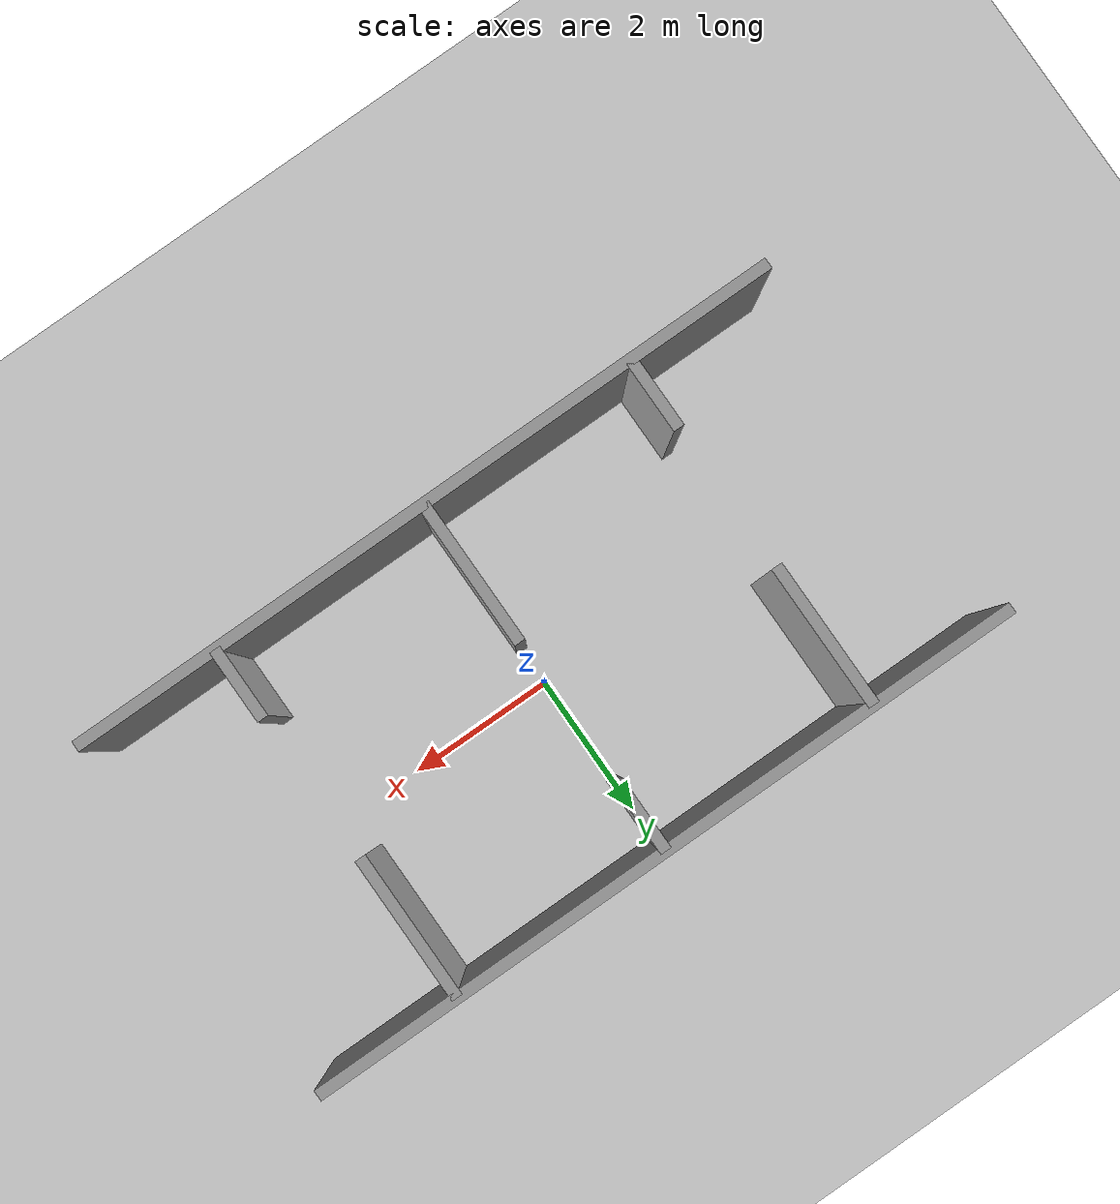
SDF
<sdf version="1.7">
 <world name="default">
  <light name="sun" type="directional">
   <pose>0 0 10 0 -0 0</pose>
   <diffuse>0.8 0.8 0.8 1</diffuse>
   <specular>0.2 0.2 0.2 1</specular>
   <attenuation>
    <range>1000</range>
    <constant>0.9</constant>
    <linear>0.01</linear>
    <quadratic>0.001</quadratic>
   </attenuation>
   <direction>-0.5 0.1 -0.9</direction>
   <spot><inner_angle>0</inner_angle><outer_angle>0</outer_angle><falloff>0</falloff></spot>
  </light>
  <model name="ground_plane">
   <static>1</static>
   <link name="link">
    <collision name="collision">
     <geometry><plane><normal>0 0 1</normal><size>100 100</size></plane></geometry>
     <surface>
      <contact><collide_bitmask>65535</collide_bitmask></contact>
      <friction><ode><mu>100</mu><mu2>50</mu2></ode></friction>
     </surface>
    </collision>
    <visual name="visual">
     <cast_shadows>0</cast_shadows>
     <geometry><plane><normal>0 0 1</normal><size>100 100</size></plane></geometry>
     <material>
      <script><uri>file://media/materials/scripts/gazebo.material</uri><name>Gazebo/Grey</name></script>
     </material>
    </visual>
   </link>
  </model>
  <gravity>0 0 -9.8</gravity>
  <magnetic_field>6e-06 2.3e-05 -4.2e-05</magnetic_field>
  <atmosphere type="adiabatic"/>
  <physics type="ode">
   <max_step_size>0.001</max_step_size>
   <real_time_factor>1</real_time_factor>
   <real_time_update_rate>1000</real_time_update_rate>
  </physics>
  <scene><ambient>0.4 0.4 0.4 1</ambient><background>0.7 0.7 0.7 1</background><shadows>1</shadows></scene>
  <spherical_coordinates>
   <surface_model>EARTH_WGS84</surface_model>
   <latitude_deg>0</latitude_deg>
   <longitude_deg>0</longitude_deg>
   <elevation>0</elevation>
   <heading_deg>0</heading_deg>
  </spherical_coordinates>
  <model name="wall_1">
   <link name="Wall_2">
    <inertial>
     <mass>1</mass>
     <inertia><ixx>1</ixx><ixy>0</ixy><ixz>0</ixz><iyy>1</iyy><iyz>0</iyz><izz>1</izz></inertia>
    </inertial>
    <visual name="Wall_2_Visual">
     <pose>0 0 1.25 0 -0 0</pose>
     <geometry><box><size>10 0.15 2.5</size></box></geometry>
     <material>
      <script><uri>file://media/materials/scripts/gazebo.material</uri><name>Gazebo/Grey</name></script>
      <ambient>1 1 1 1</ambient>
      <shader type="pixel"><normal_map>__default__</normal_map></shader>
      <diffuse>0.7 0.7 0.7 1</diffuse>
      <specular>0.01 0.01 0.01 1</specular>
      <emissive>0 0 0 1</emissive>
     </material>
     <meta><layer>0</layer></meta>
    </visual>
    <collision name="Wall_2_Collision">
     <pose>0 0 1.25 0 -0 0</pose>
     <geometry><box><size>10 0.15 2.5</size></box></geometry>
     <surface>
      <friction>
       <ode><mu>1</mu><mu2>1</mu2><fdir1>0 0 0</fdir1><slip1>0</slip1><slip2>0</slip2></ode>
       <torsional>
        <coefficient>1</coefficient>
        <patch_radius>0</patch_radius>
        <surface_radius>0</surface_radius>
        <use_patch_radius>1</use_patch_radius>
        <ode><slip>0</slip></ode>
       </torsional>
      </friction>
      <bounce><restitution_coefficient>0</restitution_coefficient><threshold>1e+06</threshold></bounce>
      <contact>
       <collide_without_contact>0</collide_without_contact>
       <collide_without_contact_bitmask>1</collide_without_contact_bitmask>
       <collide_bitmask>1</collide_bitmask>
       <ode>
        <soft_cfm>0</soft_cfm>
        <soft_erp>0.2</soft_erp>
        <kp>1e+13</kp>
        <kd>1</kd>
        <max_vel>0.01</max_vel>
        <min_depth>0</min_depth>
       </ode>
       <bullet>
        <split_impulse>1</split_impulse>
        <split_impulse_penetration_threshold>-0.01</split_impulse_penetration_threshold>
        <soft_cfm>0</soft_cfm>
        <soft_erp>0.2</soft_erp>
        <kp>1e+13</kp>
        <kd>1</kd>
       </bullet>
      </contact>
     </surface>
    </collision>
   </link>
   <static>1</static>
   <pose>0 2.5 0 0 -0 0</pose>
  </model>
  <model name="wall_1_clone">
   <link name="Wall_2">
    <inertial>
     <mass>1</mass>
     <inertia><ixx>1</ixx><ixy>0</ixy><ixz>0</ixz><iyy>1</iyy><iyz>0</iyz><izz>1</izz></inertia>
    </inertial>
    <visual name="Wall_2_Visual">
     <pose>0 0 1.25 0 -0 0</pose>
     <geometry><box><size>10 0.15 2.5</size></box></geometry>
     <material>
      <script><uri>file://media/materials/scripts/gazebo.material</uri><name>Gazebo/Grey</name></script>
      <ambient>1 1 1 1</ambient>
      <shader type="pixel"><normal_map>__default__</normal_map></shader>
      <diffuse>0.7 0.7 0.7 1</diffuse>
      <specular>0.01 0.01 0.01 1</specular>
      <emissive>0 0 0 1</emissive>
     </material>
     <meta><layer>0</layer></meta>
    </visual>
    <collision name="Wall_2_Collision">
     <pose>0 0 1.25 0 -0 0</pose>
     <geometry><box><size>10 0.15 2.5</size></box></geometry>
     <surface>
      <friction>
       <ode><mu>1</mu><mu2>1</mu2><fdir1>0 0 0</fdir1><slip1>0</slip1><slip2>0</slip2></ode>
       <torsional>
        <coefficient>1</coefficient>
        <patch_radius>0</patch_radius>
        <surface_radius>0</surface_radius>
        <use_patch_radius>1</use_patch_radius>
        <ode><slip>0</slip></ode>
       </torsional>
      </friction>
      <bounce><restitution_coefficient>0</restitution_coefficient><threshold>1e+06</threshold></bounce>
      <contact>
       <collide_without_contact>0</collide_without_contact>
       <collide_without_contact_bitmask>1</collide_without_contact_bitmask>
       <collide_bitmask>1</collide_bitmask>
       <ode>
        <soft_cfm>0</soft_cfm>
        <soft_erp>0.2</soft_erp>
        <kp>1e+13</kp>
        <kd>1</kd>
        <max_vel>0.01</max_vel>
        <min_depth>0</min_depth>
       </ode>
       <bullet>
        <split_impulse>1</split_impulse>
        <split_impulse_penetration_threshold>-0.01</split_impulse_penetration_threshold>
        <soft_cfm>0</soft_cfm>
        <soft_erp>0.2</soft_erp>
        <kp>1e+13</kp>
        <kd>1</kd>
       </bullet>
      </contact>
     </surface>
    </collision>
   </link>
   <static>1</static>
   <pose>0 -2.5 0 0 -0 0</pose>
  </model>
  <model name="wall_2">
   <link name="Wall_2">
    <inertial>
     <mass>1</mass>
     <inertia><ixx>1</ixx><ixy>0</ixy><ixz>0</ixz><iyy>1</iyy><iyz>0</iyz><izz>1</izz></inertia>
    </inertial>
    <visual name="Wall_2_Visual">
     <pose>0 0 1.25 0 -0 0</pose>
     <geometry><box><size>2 0.15 2.5</size></box></geometry>
     <material>
      <script><uri>file://media/materials/scripts/gazebo.material</uri><name>Gazebo/Grey</name></script>
      <ambient>1 1 1 1</ambient>
      <shader type="pixel"><normal_map>__default__</normal_map></shader>
      <diffuse>0.7 0.7 0.7 1</diffuse>
      <specular>0.01 0.01 0.01 1</specular>
      <emissive>0 0 0 1</emissive>
     </material>
     <meta><layer>0</layer></meta>
    </visual>
    <collision name="Wall_2_Collision">
     <pose>0 0 1.25 0 -0 0</pose>
     <geometry><box><size>2 0.15 2.5</size></box></geometry>
     <surface>
      <friction>
       <ode><mu>1</mu><mu2>1</mu2><fdir1>0 0 0</fdir1><slip1>0</slip1><slip2>0</slip2></ode>
       <torsional>
        <coefficient>1</coefficient>
        <patch_radius>0</patch_radius>
        <surface_radius>0</surface_radius>
        <use_patch_radius>1</use_patch_radius>
        <ode><slip>0</slip></ode>
       </torsional>
      </friction>
      <bounce><restitution_coefficient>0</restitution_coefficient><threshold>1e+06</threshold></bounce>
      <contact>
       <collide_without_contact>0</collide_without_contact>
       <collide_without_contact_bitmask>1</collide_without_contact_bitmask>
       <collide_bitmask>1</collide_bitmask>
       <ode>
        <soft_cfm>0</soft_cfm>
        <soft_erp>0.2</soft_erp>
        <kp>1e+13</kp>
        <kd>1</kd>
        <max_vel>0.01</max_vel>
        <min_depth>0</min_depth>
       </ode>
       <bullet>
        <split_impulse>1</split_impulse>
        <split_impulse_penetration_threshold>-0.01</split_impulse_penetration_threshold>
        <soft_cfm>0</soft_cfm>
        <soft_erp>0.2</soft_erp>
        <kp>1e+13</kp>
        <kd>1</kd>
       </bullet>
      </contact>
     </surface>
    </collision>
   </link>
   <static>1</static>
   <pose>0 -1.5 0 0 -0 1.57</pose>
  </model>
  <model name="wall_2_clone">
   <link name="Wall_2">
    <inertial>
     <mass>1</mass>
     <inertia><ixx>1</ixx><ixy>0</ixy><ixz>0</ixz><iyy>1</iyy><iyz>0</iyz><izz>1</izz></inertia>
    </inertial>
    <visual name="Wall_2_Visual">
     <pose>0 0 1.25 0 -0 0</pose>
     <geometry><box><size>2 0.15 2.5</size></box></geometry>
     <material>
      <script><uri>file://media/materials/scripts/gazebo.material</uri><name>Gazebo/Grey</name></script>
      <ambient>1 1 1 1</ambient>
      <shader type="pixel"><normal_map>__default__</normal_map></shader>
      <diffuse>0.7 0.7 0.7 1</diffuse>
      <specular>0.01 0.01 0.01 1</specular>
      <emissive>0 0 0 1</emissive>
     </material>
     <meta><layer>0</layer></meta>
    </visual>
    <collision name="Wall_2_Collision">
     <pose>0 0 1.25 0 -0 0</pose>
     <geometry><box><size>2 0.15 2.5</size></box></geometry>
     <surface>
      <friction>
       <ode><mu>1</mu><mu2>1</mu2><fdir1>0 0 0</fdir1><slip1>0</slip1><slip2>0</slip2></ode>
       <torsional>
        <coefficient>1</coefficient>
        <patch_radius>0</patch_radius>
        <surface_radius>0</surface_radius>
        <use_patch_radius>1</use_patch_radius>
        <ode><slip>0</slip></ode>
       </torsional>
      </friction>
      <bounce><restitution_coefficient>0</restitution_coefficient><threshold>1e+06</threshold></bounce>
      <contact>
       <collide_without_contact>0</collide_without_contact>
       <collide_without_contact_bitmask>1</collide_without_contact_bitmask>
       <collide_bitmask>1</collide_bitmask>
       <ode>
        <soft_cfm>0</soft_cfm>
        <soft_erp>0.2</soft_erp>
        <kp>1e+13</kp>
        <kd>1</kd>
        <max_vel>0.01</max_vel>
        <min_depth>0</min_depth>
       </ode>
       <bullet>
        <split_impulse>1</split_impulse>
        <split_impulse_penetration_threshold>-0.01</split_impulse_penetration_threshold>
        <soft_cfm>0</soft_cfm>
        <soft_erp>0.2</soft_erp>
        <kp>1e+13</kp>
        <kd>1</kd>
       </bullet>
      </contact>
     </surface>
    </collision>
   </link>
   <static>1</static>
   <pose>-3 1.5 0 0 -0 1.57</pose>
  </model>
  <model name="wall_3">
   <link name="Wall_2">
    <inertial>
     <mass>1</mass>
     <inertia><ixx>1</ixx><ixy>0</ixy><ixz>0</ixz><iyy>1</iyy><iyz>0</iyz><izz>1</izz></inertia>
    </inertial>
    <visual name="Wall_2_Visual">
     <pose>0 0 1.25 0 -0 0</pose>
     <geometry><box><size>1 0.15 2.5</size></box></geometry>
     <material>
      <script><uri>file://media/materials/scripts/gazebo.material</uri><name>Gazebo/Grey</name></script>
      <ambient>1 1 1 1</ambient>
      <shader type="pixel"><normal_map>__default__</normal_map></shader>
      <diffuse>0.7 0.7 0.7 1</diffuse>
      <specular>0.01 0.01 0.01 1</specular>
      <emissive>0 0 0 1</emissive>
     </material>
     <meta><layer>0</layer></meta>
    </visual>
    <collision name="Wall_2_Collision">
     <pose>0 0 1.25 0 -0 0</pose>
     <geometry><box><size>1 0.15 2.5</size></box></geometry>
     <surface>
      <friction>
       <ode><mu>1</mu><mu2>1</mu2><fdir1>0 0 0</fdir1><slip1>0</slip1><slip2>0</slip2></ode>
       <torsional>
        <coefficient>1</coefficient>
        <patch_radius>0</patch_radius>
        <surface_radius>0</surface_radius>
        <use_patch_radius>1</use_patch_radius>
        <ode><slip>0</slip></ode>
       </torsional>
      </friction>
      <bounce><restitution_coefficient>0</restitution_coefficient><threshold>1e+06</threshold></bounce>
      <contact>
       <collide_without_contact>0</collide_without_contact>
       <collide_without_contact_bitmask>1</collide_without_contact_bitmask>
       <collide_bitmask>1</collide_bitmask>
       <ode>
        <soft_cfm>0</soft_cfm>
        <soft_erp>0.2</soft_erp>
        <kp>1e+13</kp>
        <kd>1</kd>
        <max_vel>0.01</max_vel>
        <min_depth>0</min_depth>
       </ode>
       <bullet>
        <split_impulse>1</split_impulse>
        <split_impulse_penetration_threshold>-0.01</split_impulse_penetration_threshold>
        <soft_cfm>0</soft_cfm>
        <soft_erp>0.2</soft_erp>
        <kp>1e+13</kp>
        <kd>1</kd>
       </bullet>
      </contact>
     </surface>
    </collision>
   </link>
   <static>1</static>
   <pose>-3 -2 0 0 -0 1.57</pose>
  </model>
  <model name="wall_3_clone">
   <link name="Wall_2">
    <inertial>
     <mass>1</mass>
     <inertia><ixx>1</ixx><ixy>0</ixy><ixz>0</ixz><iyy>1</iyy><iyz>0</iyz><izz>1</izz></inertia>
    </inertial>
    <visual name="Wall_2_Visual">
     <pose>0 0 1.25 0 -0 0</pose>
     <geometry><box><size>1 0.15 2.5</size></box></geometry>
     <material>
      <script><uri>file://media/materials/scripts/gazebo.material</uri><name>Gazebo/Grey</name></script>
      <ambient>1 1 1 1</ambient>
      <shader type="pixel"><normal_map>__default__</normal_map></shader>
      <diffuse>0.7 0.7 0.7 1</diffuse>
      <specular>0.01 0.01 0.01 1</specular>
      <emissive>0 0 0 1</emissive>
     </material>
     <meta><layer>0</layer></meta>
    </visual>
    <collision name="Wall_2_Collision">
     <pose>0 0 1.25 0 -0 0</pose>
     <geometry><box><size>1 0.15 2.5</size></box></geometry>
     <surface>
      <friction>
       <ode><mu>1</mu><mu2>1</mu2><fdir1>0 0 0</fdir1><slip1>0</slip1><slip2>0</slip2></ode>
       <torsional>
        <coefficient>1</coefficient>
        <patch_radius>0</patch_radius>
        <surface_radius>0</surface_radius>
        <use_patch_radius>1</use_patch_radius>
        <ode><slip>0</slip></ode>
       </torsional>
      </friction>
      <bounce><restitution_coefficient>0</restitution_coefficient><threshold>1e+06</threshold></bounce>
      <contact>
       <collide_without_contact>0</collide_without_contact>
       <collide_without_contact_bitmask>1</collide_without_contact_bitmask>
       <collide_bitmask>1</collide_bitmask>
       <ode>
        <soft_cfm>0</soft_cfm>
        <soft_erp>0.2</soft_erp>
        <kp>1e+13</kp>
        <kd>1</kd>
        <max_vel>0.01</max_vel>
        <min_depth>0</min_depth>
       </ode>
       <bullet>
        <split_impulse>1</split_impulse>
        <split_impulse_penetration_threshold>-0.01</split_impulse_penetration_threshold>
        <soft_cfm>0</soft_cfm>
        <soft_erp>0.2</soft_erp>
        <kp>1e+13</kp>
        <kd>1</kd>
       </bullet>
      </contact>
     </surface>
    </collision>
   </link>
   <static>1</static>
   <pose>0 2 0 0 -0 1.57</pose>
  </model>
  <model name="wall_3_clone_clone">
   <link name="Wall_2">
    <inertial>
     <mass>1</mass>
     <inertia><ixx>1</ixx><ixy>0</ixy><ixz>0</ixz><iyy>1</iyy><iyz>0</iyz><izz>1</izz></inertia>
    </inertial>
    <visual name="Wall_2_Visual">
     <pose>0 0 1.25 0 -0 0</pose>
     <geometry><box><size>1 0.15 2.5</size></box></geometry>
     <material>
      <script><uri>file://media/materials/scripts/gazebo.material</uri><name>Gazebo/Grey</name></script>
      <ambient>1 1 1 1</ambient>
      <shader type="pixel"><normal_map>__default__</normal_map></shader>
      <diffuse>0.7 0.7 0.7 1</diffuse>
      <specular>0.01 0.01 0.01 1</specular>
      <emissive>0 0 0 1</emissive>
     </material>
     <meta><layer>0</layer></meta>
    </visual>
    <collision name="Wall_2_Collision">
     <pose>0 0 1.25 0 -0 0</pose>
     <geometry><box><size>1 0.15 2.5</size></box></geometry>
     <surface>
      <friction>
       <ode><mu>1</mu><mu2>1</mu2><fdir1>0 0 0</fdir1><slip1>0</slip1><slip2>0</slip2></ode>
       <torsional>
        <coefficient>1</coefficient>
        <patch_radius>0</patch_radius>
        <surface_radius>0</surface_radius>
        <use_patch_radius>1</use_patch_radius>
        <ode><slip>0</slip></ode>
       </torsional>
      </friction>
      <bounce><restitution_coefficient>0</restitution_coefficient><threshold>1e+06</threshold></bounce>
      <contact>
       <collide_without_contact>0</collide_without_contact>
       <collide_without_contact_bitmask>1</collide_without_contact_bitmask>
       <collide_bitmask>1</collide_bitmask>
       <ode>
        <soft_cfm>0</soft_cfm>
        <soft_erp>0.2</soft_erp>
        <kp>1e+13</kp>
        <kd>1</kd>
        <max_vel>0.01</max_vel>
        <min_depth>0</min_depth>
       </ode>
       <bullet>
        <split_impulse>1</split_impulse>
        <split_impulse_penetration_threshold>-0.01</split_impulse_penetration_threshold>
        <soft_cfm>0</soft_cfm>
        <soft_erp>0.2</soft_erp>
        <kp>1e+13</kp>
        <kd>1</kd>
       </bullet>
      </contact>
     </surface>
    </collision>
   </link>
   <static>1</static>
   <pose>3 -2 0 0 -0 1.57</pose>
  </model>
  <model name="wall_2_clone_clone">
   <link name="Wall_2">
    <inertial>
     <mass>1</mass>
     <inertia><ixx>1</ixx><ixy>0</ixy><ixz>0</ixz><iyy>1</iyy><iyz>0</iyz><izz>1</izz></inertia>
    </inertial>
    <visual name="Wall_2_Visual">
     <pose>0 0 1.25 0 -0 0</pose>
     <geometry><box><size>2 0.15 2.5</size></box></geometry>
     <material>
      <script><uri>file://media/materials/scripts/gazebo.material</uri><name>Gazebo/Grey</name></script>
      <ambient>1 1 1 1</ambient>
      <shader type="pixel"><normal_map>__default__</normal_map></shader>
      <diffuse>0.7 0.7 0.7 1</diffuse>
      <specular>0.01 0.01 0.01 1</specular>
      <emissive>0 0 0 1</emissive>
     </material>
     <meta><layer>0</layer></meta>
    </visual>
    <collision name="Wall_2_Collision">
     <pose>0 0 1.25 0 -0 0</pose>
     <geometry><box><size>2 0.15 2.5</size></box></geometry>
     <surface>
      <friction>
       <ode><mu>1</mu><mu2>1</mu2><fdir1>0 0 0</fdir1><slip1>0</slip1><slip2>0</slip2></ode>
       <torsional>
        <coefficient>1</coefficient>
        <patch_radius>0</patch_radius>
        <surface_radius>0</surface_radius>
        <use_patch_radius>1</use_patch_radius>
        <ode><slip>0</slip></ode>
       </torsional>
      </friction>
      <bounce><restitution_coefficient>0</restitution_coefficient><threshold>1e+06</threshold></bounce>
      <contact>
       <collide_without_contact>0</collide_without_contact>
       <collide_without_contact_bitmask>1</collide_without_contact_bitmask>
       <collide_bitmask>1</collide_bitmask>
       <ode>
        <soft_cfm>0</soft_cfm>
        <soft_erp>0.2</soft_erp>
        <kp>1e+13</kp>
        <kd>1</kd>
        <max_vel>0.01</max_vel>
        <min_depth>0</min_depth>
       </ode>
       <bullet>
        <split_impulse>1</split_impulse>
        <split_impulse_penetration_threshold>-0.01</split_impulse_penetration_threshold>
        <soft_cfm>0</soft_cfm>
        <soft_erp>0.2</soft_erp>
        <kp>1e+13</kp>
        <kd>1</kd>
       </bullet>
      </contact>
     </surface>
    </collision>
   </link>
   <static>1</static>
   <pose>3 1.5 0 0 -0 1.57</pose>
  </model>
 </world>
</sdf>
